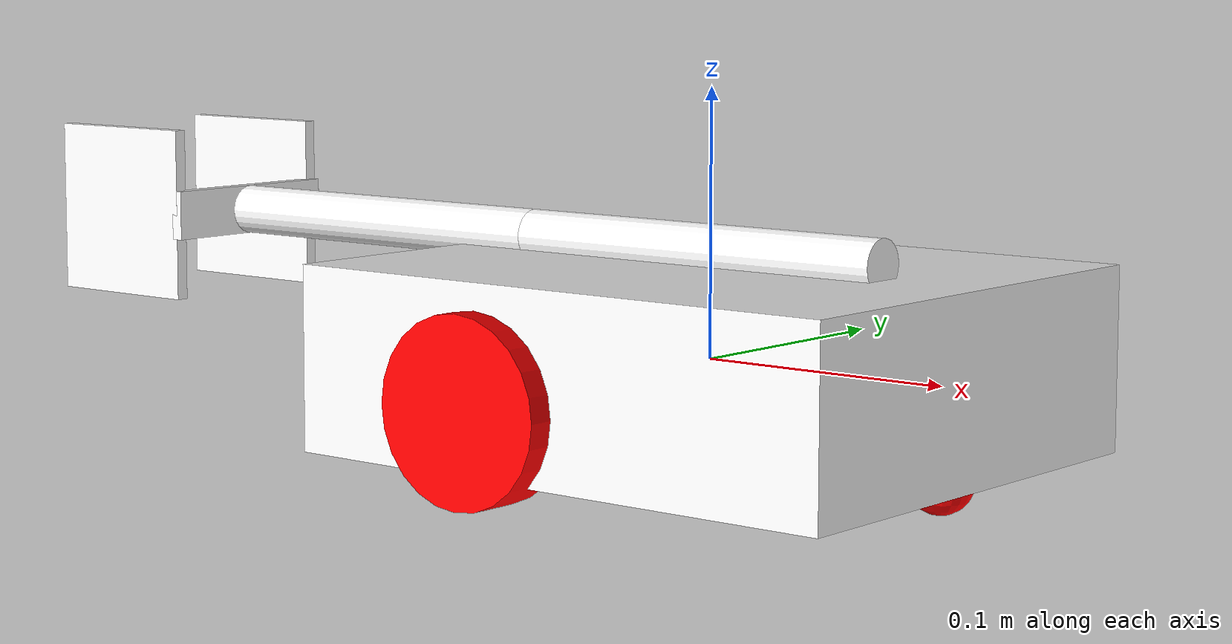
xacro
<?xml version="1.0"?>
<robot name="visual">

  <!-- Colour -->
  <material name="red">
    <color rgba="1 0 0 1"/>
  </material>
  <material name="black">
    <color rgba="0 0 0 1"/>
  </material>
  <material name="white">
    <color rgba="1 1 1 1"/>
  </material>

  <link name="odom"/>

  <link name="base_link">
    <visual>
      <geometry>
        <box size="0.230 0.192 0.070"/>
      </geometry>
      <material name="white"/>
    </visual>
    <colision>
      <geometry>
        <box size="0.230 0.222 0.070"/>
      </geometry>
    </colision>
  </link>

  <joint name="base_link_joint" type="fixed">
    <parent link="odom"/>
    <child link="base_link"/>
    <origin xyz="0 0 0" rpy="0 0 0"/>
  </joint>

  <!-- Wheel Base -->
    <!-- Left Wheel -->
  <link name="left_base">
    <visual>
      <geometry>
        <box size="0.01 0.01 0.01"/>
      </geometry>
    </visual>
   </link>

  <joint name="left_base_joint" type="fixed">
    <parent link="base_link"/>
    <child link="left_base"/>
    <origin xyz="-0.031 -0.096 -0.010" rpy="0 0 0"/>
   </joint>

  <link name="left_wheel">
    <visual>
      <origin rpy="1.57075 0 0" xyz="0 0 0"/>
      <geometry>
        <cylinder length="0.020" radius="0.035"/>
      </geometry>
      <material name="red"/>
    </visual>
    <collision>
      <origin rpy="1.57075 0 0" xyz="0 0 0"/>
      <geometry>
        <cylinder length="0.020" radius="0.035"/>
      </geometry>
    </collision>
  </link>

  <joint name="left_wheel_joint" type="continuous">
    <axis xyz="0 1 0"/>
    <parent link="left_base"/>
    <child link="left_wheel"/>
    <origin xyz="0 0 0" rpy="0 0 0"/>
  </joint>

    <!-- Right wheel -->
  <link name="right_base">
    <visual>
      <geometry>
        <box size="0.01 0.01 0.01"/>
      </geometry>
    </visual>
   </link>

  <joint name="right_base_joint" type="fixed">
    <parent link="base_link"/>
    <child link="right_base"/>
    <origin xyz="-0.031 0.096 -0.010" rpy="0 0 0"/>
   </joint>

  <link name="right_wheel">
    <visual>
      <origin rpy="1.57075 0 0" xyz="0 0 0"/>
      <geometry>
        <cylinder length="0.020" radius="0.035"/>
      </geometry>
      <material name="red"/>
    </visual>
    <collision>
      <origin rpy="1.57075 0 0" xyz="0 0 0"/>
      <geometry>
        <cylinder length="0.020" radius="0.035"/>
      </geometry>
    </collision>
  </link>

  <joint name="right_wheel_joint" type="continuous">
    <axis xyz="0 1 0"/>
    <parent link="right_base"/>
    <child link="right_wheel"/>
    <origin xyz="0 0 0" rpy="0 0 0"/>
  </joint>

  <!-- Caster -->
   <link name="caster_wheel">
    <visual>
      <geometry>
        <sphere radius="0.0125"/>
      </geometry>
      <material name="red"/>
    </visual>
    <collision>
      <origin xyz="0 0 0" rpy="0 0 0"/>
      <geometry>
        <sphere radius="0.0125"/>
      </geometry>
    </collision>
   </link>

   <joint name="caster_wheel_joint" type="fixed">
    <parent link="base_link"/>
    <child link="caster_wheel"/>
    <origin xyz="0.100 0 -0.0325" rpy="0 0 0"/>
   </joint>

  <!-- Arm -->
   <!-- Shoulder -->
  <joint name="arm_shoulder_joint" type="revolute">
    <parent link="base_link"/>
    <child link="arm_link1"/>
    <origin xyz="0.075 0 0.040" rpy="0 0 0"/>
    <axis xyz="0 1 0"/>
    <limit lower="0" upper="3.1415" effort="5.0" velocity="1.0"/>
  </joint>

    <!-- Arm_1 -->
  <link name="arm_link1">
    <visual>
      <origin xyz="-0.080 0 0" rpy="0 1.57075 0"/>
      <geometry>
        <cylinder length="0.160" radius="0.010"/>
      </geometry>
      <material name="white"/>
    </visual>
    <collision>
      <origin xyz="0.080 0 0" rpy="0 1.57075 0"/>
      <geometry>
        <cylinder length="0.160" radius="0.010"/>
      </geometry>
    </collision>
  </link>

    <!-- Elbow -->
  <joint name="arm_elbow_joint" type="revolute">
    <parent link="arm_link1"/>
    <child link="arm_link2"/>
    <origin xyz="-0.160 0 0" rpy="0 0 0"/>
    <axis xyz="0 1 0"/>
    <limit lower="0" upper="3.1415" effort="5.0" velocity="1.0"/>
  </joint>

    <!-- Arm_2 -->
  <link name="arm_link2">
    <visual>
      <origin xyz="-0.080 0 0" rpy="0 1.57075 0"/>
      <geometry>
        <cylinder length="0.160" radius="0.010"/>
      </geometry>
      <material name="white"/>
    </visual>
    <collision>
      <origin xyz="0.080 0 0" rpy="0 1.57075 0"/>
      <geometry>
        <cylinder length="0.160" radius="0.010"/>
      </geometry>
    </collision>
  </link>

    <!-- Gripper_base -->
  <link name="gripper_base">
    <visual>
      <origin xyz="0 0 0" rpy="1.57075 0 1.57075"/>
      <geometry>
        <box size="0.080 0.020 0.005"/>
      </geometry>
      <material name="white"/>
    </visual>
    <collision>
      <origin xyz="0 0 0" rpy="1.57075 0 1.57075"/>
      <geometry>
        <box size="0.080 0.020 0.005"/>
      </geometry>
    </collision>
  </link>

  <joint name="gripper_base_joint" type="fixed">
    <parent link="arm_link2"/>
    <child link="gripper_base"/>
    <origin xyz="-0.160 0 0" rpy="0 3.1415 0"/>
  </joint>

  <link name="finger_left">
    <visual>
      <origin xyz="0.035 0 0" rpy="1.57075 0 0"/>
      <geometry>
        <box size="0.070 0.070 0.005"/>
      </geometry>
      <material name="white"/>
    </visual>
    <collision>
      <origin xyz="0.035 0 0" rpy="1.57075 0 0"/>
      <geometry>
        <box size="0.070 0.070 0.005"/>
      </geometry>
    </collision>
  </link>

  <joint name="finger_left_joint" type="prismatic">
    <parent link="gripper_base"/>
    <child link="finger_left"/>
    <limit effort="1000.0" lower="-0.030" upper="0.0" velocity="0.5"/>
    <axis xyz="0 1 0"/>
    <origin xyz="0 0.0375 0" rpy="0 0 0"/>
  </joint>

  <link name="finger_right">
    <visual>
      <origin xyz="0.035 0 0" rpy="1.57075 0 0"/>
      <geometry>
        <box size="0.070 0.070 0.005"/>
      </geometry>
      <material name="white"/>
    </visual>
    <collision>
      <origin xyz="0.035 0 0" rpy="1.57075 0 0"/>
      <geometry>
        <box size="0.070 0.070 0.005"/>
      </geometry>
    </collision>
  </link>

  <joint name="finger_right_joint" type="prismatic">
    <parent link="gripper_base"/>
    <child link="finger_right"/>
    <limit effort="1000.0" lower="-0.030" upper="0.0" velocity="0.5"/>
    <axis xyz="0 1 0"/>
    <origin xyz="0 -0.0375 0" rpy="3.1415 0 0"/>
  </joint>

  <!-- Lidar -->
  <link name="lidar_link">
    <visual>
      <origin xyz="0 0 0" rpy="0 0 0"/>
      <geometry>
        <cylinder radius="0.035" length="0.025"/>
        <!-- поменять радиус и высоту -->
      </geometry>
      <material name="black"/>
    </visual>
    <collision>
      <origin xyz="0 0 0" rpy="0 0 0"/>
      <geometry>
        <cylinder radius="0.035" length="0.025"/>
        <!-- поменять радиус и высоту -->
      </geometry>
    </collision>
  </link>

  <joint name="lidar_joint" type="fixed">
    <parent link="base_link"/>
    <child link="lidar_link"/>
    <origin xyz="0.080 0 -0.020" rpy="3.1415 0 0"/>
  </joint>

</robot>
